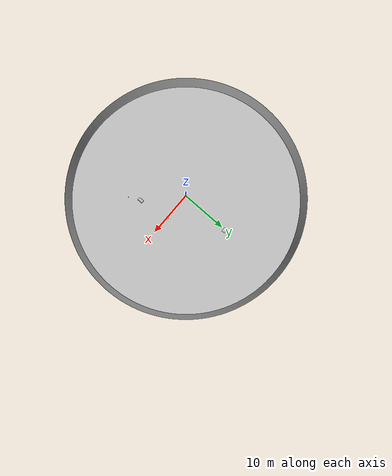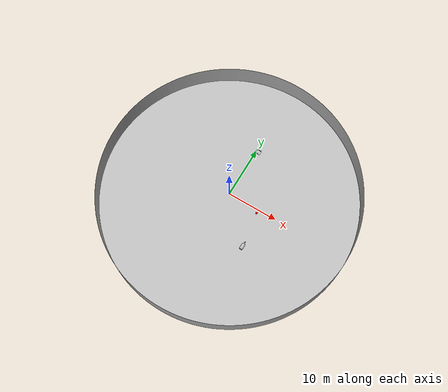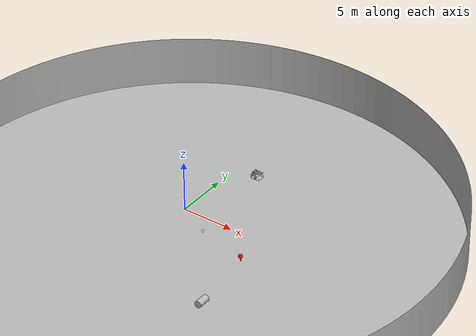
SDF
<sdf version="1.6">
 <world name="default">
  <physics name="default_physics" default="true" type="ode">
   <max_step_size>0.002</max_step_size>
   <real_time_factor>1</real_time_factor>
   <real_time_update_rate>500</real_time_update_rate>
   <ode><solver><type>quick</type><iters>50</iters><sor>0.5</sor></solver></ode>
  </physics>
  <scene>
   <ambient>0.01 0.01 0.01 1.0</ambient>
   <sky><clouds><speed>12</speed></clouds></sky>
   <shadows>1</shadows>
  </scene>
  <spherical_coordinates>
   <latitude_deg>56.71897669633431</latitude_deg>
   <longitude_deg>3.515625</longitude_deg>
  </spherical_coordinates>
  <light type="directional" name="sun_diffuse_1">
   <pose>-200 -200 100 0 0 0</pose>
   <diffuse>0.6 0.6 0.6 1</diffuse>
   <specular>0 0 0 1</specular>
   <direction>-0.3 -0.3 -1</direction>
  </light>
  <light type="directional" name="sun_diffuse_2">
   <pose>-100 50 200 0 0 0</pose>
   <diffuse>0.6 0.6 0.6 1</diffuse>
   <specular>0 0 0 1</specular>
   <direction>-0.3 -0.3 -1</direction>
  </light>
  <light type="directional" name="sun_diffuse_3">
   <pose>-150 -130 50 0 0 0</pose>
   <diffuse>0.6 0.6 0.6 1</diffuse>
   <specular>0.2 0.2 0.2 1</specular>
   <direction>0.5 0.5 -1</direction>
  </light>
  <include><uri>model://pool_cylinder</uri><pose>0 0 -3 0 0 0</pose></include>
  <include><uri>model://cage</uri><pose>0 11 -2.7 0 0 0 0</pose></include>
  <include><uri>model://ball</uri><pose>6 0 -2.5 0 0 0</pose></include>
  <include><uri>model://oil_drum</uri><pose>7 -7 -2.5 0 0 0</pose></include>
  <plugin name="underwater_current_plugin" filename="libuuv_underwater_current_ros_plugin.so">
   <namespace>hydrodynamics</namespace>
   <constant_current>
    <topic>current_velocity</topic>
    <velocity><mean>0</mean><min>0</min><max>5</max><mu>0.0</mu><noiseAmp>0.0</noiseAmp></velocity>
    <horizontal_angle>
     <mean>0</mean>
     <min>-3.141592653589793238</min>
     <max>3.141592653589793238</max>
     <mu>0.0</mu>
     <noiseAmp>0.0</noiseAmp>
    </horizontal_angle>
    <vertical_angle>
     <mean>0</mean>
     <min>-3.141592653589793238</min>
     <max>3.141592653589793238</max>
     <mu>0.0</mu>
     <noiseAmp>0.0</noiseAmp>
    </vertical_angle>
   </constant_current>
  </plugin>
  <model name="camera">
   <publishTf>true</publishTf>
   <static>true</static>
   <pose>8 -8 6 0.0 0.65643 2.3</pose>
   <link name="camera_link">
    <visual name="visual"><geometry><box><size>0.05 0.2 0.2</size></box></geometry></visual>
    <sensor name="my_camera" type="camera">
     <camera>
      <horizontal_fov>1.047</horizontal_fov>
      <image><width>800</width><height>600</height><format>R8G8B8</format></image>
      <clip><near>0.1</near><far>100</far></clip>
     </camera>
     <always_on>1</always_on>
     <update_rate>30</update_rate>
     <plugin name="camera_controller" filename="libcamera_bbox.so">
      <alwaysOn>true</alwaysOn>
      <updateRate>10.0</updateRate>
      <cameraName>/gazebo/camera</cameraName>
      <imageTopicName>image_raw</imageTopicName>
      <cameraInfoTopicName>camera_info</cameraInfoTopicName>
      <frameName>gazebo/camera_link</frameName>
      <hackBaseline>0.07</hackBaseline>
      <distortionK1>0.0</distortionK1>
      <distortionK2>0.0</distortionK2>
      <distortionK3>0.0</distortionK3>
      <distortionT1>0.0</distortionT1>
      <distortionT2>0.0</distortionT2>
     </plugin>
    </sensor>
   </link>
  </model>
  <plugin name="sc_interface" filename="libuuv_sc_ros_interface_plugin.so"/>
 </world>
</sdf>

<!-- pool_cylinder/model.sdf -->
<sdf version="1.5">
<model name="pool_cylinder">
  <static>true</static>
  <link name="pool_cylinder_link">

  <inertial>
    <inertia>
      <ixx>1</ixx>
      <ixy>0</ixy>
      <ixz>0</ixz>
      <iyy>1</iyy>
      <iyz>0</iyz>
      <izz>1</izz>
    </inertia>
    <mass>20</mass>
  </inertial>

  <visual name="pool_cylinder">
    <pose>0 0 0 1.5708 0 0</pose>
    <geometry>
      <mesh><uri>model://pool_cylinder/meshes/pool_cylinder.obj</uri><scale>1 1 1</scale></mesh>
    </geometry>
  </visual>

  <collision name="pool_cylinder">
    <pose>0 0 0 1.5708 0 0</pose>
    <geometry>
      <mesh><uri>model://pool_cylinder/meshes/pool_cylinder.obj</uri><scale>1 1 1</scale></mesh>
    </geometry>
  </collision>

  </link>
</model>
</sdf>

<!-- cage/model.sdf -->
<sdf version="1.5">
<model name="cage">
  <static>true</static>
  <link name="cage_link">

  <inertial>
    <mass>1</mass>
    <pose>0 0 0 0 0 0</pose>
  </inertial>

  <visual name="cage">
    <pose>0 0 0 0 0 0</pose>
    <geometry>
      <mesh><uri>model://cage/meshes/cage.dae</uri><scale>1 1 1</scale></mesh>
    </geometry>
  </visual>

  <collision name="cage">
    <pose>0 0 0 0 0 0</pose>
    <geometry>
      <mesh><uri>model://cage/meshes/cage.dae</uri><scale>1 1 1</scale></mesh>
    </geometry>
  </collision>

  </link>
</model>
</sdf>

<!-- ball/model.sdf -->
<sdf version="1.5">
<model name="ball">
  <static>false</static>
  <link name="ball_link">

  <inertial>
    <mass>1</mass>
    <pose>0 0 0 0 0 0</pose>
  </inertial>

  <visual name="ball">
    <pose>0 0 0 0 0 0</pose>
    <geometry>
      <mesh><uri>model://ball/meshes/ball.dae</uri><scale>1 1 1</scale></mesh>
    </geometry>
  </visual>

  <collision name="ball">
    <pose>0 0 0 0 0 0</pose>
    <geometry>
      <mesh><uri>model://ball/meshes/ball.dae</uri><scale>1 1 1</scale></mesh>
    </geometry>
  </collision>

  </link>
</model>
</sdf>

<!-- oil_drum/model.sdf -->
<sdf version="1.5">
<model name="oil_drum">
  <plugin name='SetPosePlugin' filename='libSetPosePlugin.so'/>
  <plugin name='GetPosePlugin' filename='libGetPosePlugin.so'/>
  <static>false</static>
  <link name="oil_drum_link">

  <inertial>
    <inertia>
      <ixx>1</ixx>
      <ixy>0</ixy>
      <ixz>0</ixz>
      <iyy>1</iyy>
      <iyz>0</iyz>
      <izz>1</izz>
    </inertia>
    <mass>5</mass>
  </inertial>

  <visual name="oil_drum">
    <pose>0 0 0 0 0 0</pose>
    <geometry>
      <mesh><uri>model://oil_drum/meshes/oil_drum.obj</uri><scale>1 1 1</scale></mesh>
    </geometry>
  </visual>

  <collision name="oil_drum">
    <pose>0 0 0 0 0 0</pose>
    <geometry>
      <mesh><uri>model://oil_drum/meshes/oil_drum.obj</uri><scale>1 1 1</scale></mesh>
    </geometry>
  </collision>

  </link>
</model>
</sdf>
